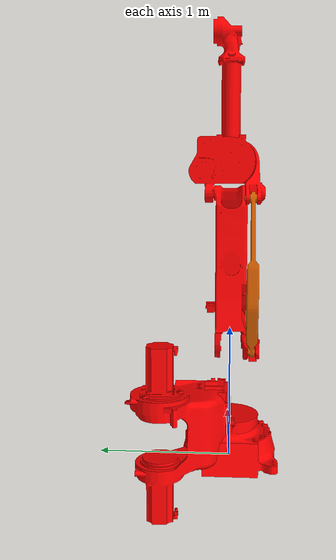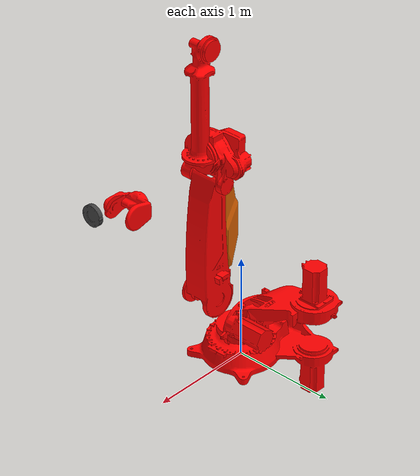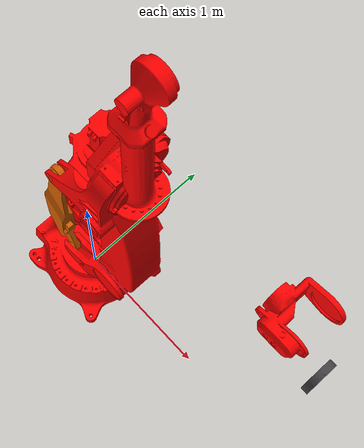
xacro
<?xml version="1.0"?>
<robot name="nj_220_2_7" xmlns:xacro="http://www.ros.org/wiki/xacro">
<xacro:include filename="$(find nj_220_2_7_gazebo)/urdf/nj_220_2_7.xacro" />

<xacro:property name="prefix" value="''" />

<link name="world"/>
  <xacro:nj_220_2_7 prefix="${prefix}"/>
  <joint name="${prefix}world_to_base_link" type="fixed">
      <origin
        xyz="0 0 0"
        rpy="0 0 0" />
      <parent link="world"/>
      <child link="${prefix}base_link"/>
  </joint>
</robot>

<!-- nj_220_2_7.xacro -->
<robot xmlns:xacro="http://ros.org/wiki/xacro">
<xacro:macro name="nj_220_2_7" params="prefix:='' interface:=hardware_interface/PositionJointInterface">

  <xacro:property name="joint_1_vel_limit" value="1.74533" />
  <xacro:property name="joint_2_vel_limit" value="1.5708"  />
  <xacro:property name="joint_3_vel_limit" value="1.91986" />
  <xacro:property name="joint_4_vel_limit" value="2.26893" />
  <xacro:property name="joint_5_vel_limit" value="2.26893" />
  <xacro:property name="joint_6_vel_limit" value="3.40339" />

  <xacro:property name="joint_1_eff_limit" value="100000" />
  <xacro:property name="joint_2_eff_limit" value="100000" />
  <xacro:property name="joint_3_eff_limit" value="100000" />
  <xacro:property name="joint_4_eff_limit" value="1230" />
  <xacro:property name="joint_5_eff_limit" value="1230" />
  <xacro:property name="joint_6_eff_limit" value="712" />

  <link name="${prefix}base_link">
    <inertial>
      <origin
        xyz="0.035817 -0.00001 0.13320"
        rpy="0 0 0" />
      <mass
        value="780.97" />
      <inertia
        ixx="39.64573032"
        ixy="0.00269524"
        ixz="-3.73357627"
        iyy="48.50586929"
        iyz="-0.00127807"
        izz="49.079656" />
    </inertial>
    <visual>
      <origin
        xyz="0 0 0"
        rpy="0 0 0" />
      <geometry>
        <mesh
          filename="package://nj_220_2_7_gazebo/meshes/base_link.STL" />
      </geometry>
      <material
        name="">
        <color
          rgba="1 0 0 1" />
      </material>
    </visual>
    <collision>
      <origin
        xyz="0 0 0"
        rpy="0 0 0" />
      <geometry>
        <mesh
          filename="package://nj_220_2_7_gazebo/meshes/base_link.STL" />
      </geometry>
    </collision>
  </link>
  <link name="${prefix}link_1">
    <inertial>
      <origin
        xyz="0.31397 0.02536 0.37802"
        rpy="0 0 0" />
      <mass
        value="120.57" />
      <inertia
        ixx="96.14944607"
        ixy="2.82831578"
        ixz="59.92048931"
        iyy="132.52767347"
        iyz="3.87136939"
        izz="76.40305744" />
    </inertial>
    <visual>
      <origin
        xyz="0 0 0"
        rpy="0 0 0" />
      <geometry>
        <mesh
          filename="package://nj_220_2_7_gazebo/meshes/link_1.STL" />
      </geometry>
      <material
        name="">
        <color
          rgba="1 0 0 1" />
      </material>
    </visual>
    <collision>
      <origin
        xyz="0 0 0"
        rpy="0 0 0" />
      <geometry>
        <mesh
          filename="package://nj_220_2_7_gazebo/meshes/link_1.STL" />
      </geometry>
    </collision>
  </link>
  <joint name="${prefix}joint_1" type="revolute">
    <origin
      xyz="0 0 0.331"
      rpy="0 0 0" />
    <parent
      link="${prefix}base_link" />
    <child
      link="${prefix}link_1" />
    <axis
      xyz="0 0 1" />
    <limit
      lower="-1.570796327"
      upper="1.570796327"
      effort="${joint_1_eff_limit}"
      velocity="${joint_1_vel_limit}" />
  </joint>
  <link name="${prefix}link_2">
    <inertial>
      <origin
        xyz="0.018416 -0.00326 0.51384"
        rpy="0 0 0" />
      <mass
        value="120.34" />
      <inertia
        ixx="53.73638778"
        ixy="-0.00887173"
        ixz="1.24711967"
        iyy="53.48705119"
        iyz="-0.66793611"
        izz="2.25971599" />
    </inertial>
    <visual>
      <origin
        xyz="0 0 0"
        rpy="0 0 0" />
      <geometry>
        <mesh
          filename="package://nj_220_2_7_gazebo/meshes/link_2.STL" />
      </geometry>
      <material
        name="">
        <color
          rgba="1 0 0 1" />
      </material>
    </visual>
    <collision>
      <origin
        xyz="0 0 0"
        rpy="0 0 0" />
      <geometry>
        <mesh
          filename="package://nj_220_2_7_gazebo/meshes/link_2.STL" />
      </geometry>
    </collision>
  </link>
  <joint name="${prefix}joint_2" type="revolute">
    <origin
      xyz="0.4 0 0.499"
      rpy="0 0 0" />
    <parent
      link="${prefix}link_1" />
    <child
      link="${prefix}link_2" />
    <axis
      xyz="0 1 0" />
    <limit
      lower="-1.308996939"
      upper="1.658062789"
      effort="${joint_2_eff_limit}"
      velocity="${joint_2_vel_limit}" />
  </joint>
  <link name="${prefix}link_2_1">
     <inertial>
       <origin
         xyz="0.14943 -0.0063786 0.023924"
         rpy="0 0 0" />
       <mass
         value="41.905" />
       <inertia
         ixx="0.18520588"
         ixy="-0.07064049"
         ixz="0.17218606"
         iyy="1.70899486"
         iyz="-0.00657138"
         izz="1.77577899" />
     </inertial>
     <visual>
       <origin
         xyz="0 0 0"
         rpy="0 0 0" />
       <geometry>
         <mesh
           filename="package://nj_220_2_7_gazebo/meshes/link_2_1.STL" />
       </geometry>
       <material
         name="">
         <color
           rgba="1 0 0 1" />
       </material>
     </visual>
     <collision>
       <origin
         xyz="0 0 0"
         rpy="0 0 0" />
       <geometry>
         <mesh
           filename="package://nj_220_2_7_gazebo/meshes/link_2_1.STL" />
       </geometry>
     </collision>
   </link>
  <joint name="${prefix}joint_3" type="revolute">
     <origin xyz="0.400 -0.1945 0.499" rpy="1.570796327 0.087266 3.141592654" />
     <parent link="${prefix}link_1" />
     <child link="${prefix}link_2_1" />
     <axis xyz="0 0 1" />
     <limit
       lower="-4.468042885"
       upper="0.174532925"
       effort="${joint_3_eff_limit}"
       velocity="${joint_3_vel_limit}" />
  </joint>
  <link name="${prefix}link_2_2">
     <inertial>
       <origin
         xyz="0.06443 0.51885 0.01485"
         rpy="0 0 0" />
       <mass
         value="60.72" />
       <inertia
         ixx="21.93937071"
         ixy="1.89190480"
         ixz="0.05733724"
         iyy="0.41028863"
         iyz="0.47064670"
         izz="22.27041146" />
     </inertial>
     <visual>
       <origin
         xyz="0 0 0"
         rpy="0 0 0" />
       <geometry>
         <mesh
           filename="package://nj_220_2_7_gazebo/meshes/link_2_2.STL" />
       </geometry>
     </visual>
     <collision>
       <origin
         xyz="0 0 0"
         rpy="0 0 0" />
       <geometry>
         <mesh
           filename="package://nj_220_2_7_gazebo/meshes/link_2_2.STL" />
       </geometry>
     </collision>
  </link>
  <joint name="${prefix}joint_2_1" type="continuous">
    <origin
      xyz="0.350 0 0.015"
      rpy="0 0 0.087266" />
    <parent
      link="${prefix}link_2_1" />
    <child
      link="${prefix}link_2_2" />
    <axis
      xyz="0 0 1" />
  </joint>
  <link name="${prefix}link_2_3">
    <inertial>
      <origin xyz="0 0 0" rpy="0 0 0" />
      <mass value="0.01" />
      <inertia
        ixx="0.00001"
        ixy="0.00000"
        ixz="0.00000"
        iyy="0.00001"
        iyz="0.00000"
        izz="0.00000" />
    </inertial>
  </link>
  <joint name="${prefix}joint_2_2" type="continuous">
    <origin xyz="0.0 1.175 0.0" rpy="0 0 0" />
    <parent link="${prefix}link_2_2" />
    <child link="${prefix}link_2_3" />
    <axis xyz="0 0 1" />
  </joint>
  <link name="${prefix}link_3">
    <inertial>
      <origin
        xyz="-0.04239 0.01939 0.2104"
        rpy="0 0 0" />
      <mass
        value="303.81" />
      <inertia
        ixx="24.45402173"
        ixy="-0.58037596"
        ixz="-2.46563321"
        iyy="20.71802091"
        iyz="2.40454026"
        izz="9.01610712" />
    </inertial>
    <visual>
      <origin
        xyz="0 0 0"
        rpy="0 0 0" />
      <geometry>
        <mesh
          filename="package://nj_220_2_7_gazebo/meshes/link_3.STL" />
      </geometry>
      <material
        name="">
        <color
          rgba="1 0 0 1" />
      </material>
    </visual>
    <collision>
      <origin
        xyz="0 0 0"
        rpy="0 0 0" />
      <geometry>
        <mesh
          filename="package://nj_220_2_7_gazebo/meshes/link_3.STL" />
      </geometry>
    </collision>
  </link>
  <joint name="${prefix}joint_3_1" type="continuous">
    <origin
      xyz="-0.34867 0.0305 0.1795"
      rpy="1.571 0.000 -3.141" />
    <parent
      link="${prefix}link_2_3" />
    <child
      link="${prefix}link_3" />
    <axis
      xyz="0 0 1" />
  </joint>
  <link name="${prefix}link_4">
    <inertial>
      <origin
        xyz="0.71228 -0.02567 -0.00003"
        rpy="0 0 0" />
      <mass
        value="90.963" />
      <inertia
        ixx="0.68929228290"
        ixy="-2.39235486446"
        ixz="-0.00192589885"
        iyy="58.11987131958"
        iyz="-0.00017654018"
        izz="58.29818388998" />
    </inertial>
    <visual>
      <origin
        xyz="0 0 0"
        rpy="0 0 0" />
      <geometry>
        <mesh
          filename="package://nj_220_2_7_gazebo/meshes/link_4.STL" />
      </geometry>
      <material
        name="">
        <color
          rgba="1 0 0 1" />
      </material>
    </visual>
    <collision>
      <origin
        xyz="0 0 0"
        rpy="0 0 0" />
      <geometry>
        <mesh
          filename="package://nj_220_2_7_gazebo/meshes/link_4.STL" />
      </geometry>
    </collision>
  </link>
  <joint name="${prefix}joint_4" type="revolute">
    <origin
      xyz="0.105 0 0.25"
      rpy="0 0 0" />
    <parent
      link="${prefix}link_3" />
    <child
      link="${prefix}link_4" />
    <axis
      xyz="1 0 0" />
    <limit
      lower="-6.2831853"
      upper="6.2831853"
      effort="${joint_4_eff_limit}"
      velocity="${joint_4_vel_limit}" />
  </joint>
  <link name="${prefix}link_5">
    <inertial>
      <origin
        xyz="0.09375 0.01506 0.00002"
        rpy="0 0 0" />
      <mass
        value="50.615" />
      <inertia
        ixx="0.67974396"
        ixy="0.04508972"
        ixz="0.00009980"
        iyy="0.83229961"
        iyz="0.00011851"
        izz="1.32231171" />
    </inertial>
    <visual>
      <origin
        xyz="0 0 0"
        rpy="0 0 0" />
      <geometry>
        <mesh
          filename="package://nj_220_2_7_gazebo/meshes/link_5.STL" />
      </geometry>
      <material
        name="">
        <color
          rgba="1 0 0 1" />
      </material>
    </visual>
    <collision>
      <origin
        xyz="0 0 0"
        rpy="0 0 0" />
      <geometry>
        <mesh
          filename="package://nj_220_2_7_gazebo/meshes/link_5.STL" />
      </geometry>
    </collision>
  </link>
  <joint name="${prefix}joint_5" type="revolute">
    <origin
      xyz="1.02033 0 0"
      rpy="0 0 0" />
    <parent
      link="${prefix}link_4" />
    <child
      link="${prefix}link_5" />
    <axis
      xyz="0 1 0" />
    <limit
      lower="-2.1816"
      upper="2.1816"
      effort="${joint_5_eff_limit}"
      velocity="${joint_5_vel_limit}" />
  </joint>
  <link name="${prefix}link_6">
    <inertial>
      <origin
        xyz="0.0058594 -0.00060952 -5.99E-05"
        rpy="0 0 0" />
      <mass
        value="5.3437" />
      <inertia
        ixx="0.02913604"
        ixy="-0.00000822"
        ixz="-0.00000086"
        iyy="0.01533002"
        iyz="0.00000585"
        izz="0.01518874" />
    </inertial>
    <visual>
      <origin
        xyz="0 0 0"
        rpy="0 0 0" />
      <geometry>
        <mesh
          filename="package://nj_220_2_7_gazebo/meshes/link_6.STL" />
      </geometry>
      <material
        name="">
        <color
          rgba="0.25098 0.25098 0.25098 1" />
      </material>
    </visual>
    <collision>
      <origin
        xyz="0 0 0"
        rpy="0 0 0" />
      <geometry>
        <mesh
          filename="package://nj_220_2_7_gazebo/meshes/link_6.STL" />
      </geometry>
    </collision>
  </link>
  <joint name="${prefix}joint_6" type="revolute">
    <origin
      xyz="0.2085 0 0"
      rpy="0 0 0" />
    <parent
      link="${prefix}link_5" />
    <child
      link="${prefix}link_6" />
    <axis
      xyz="1 0 0" />
    <limit
      lower="-6.2831853"
      upper="6.2831853"
      effort="${joint_6_eff_limit}"
      velocity="${joint_6_vel_limit}" />
  </joint>

  <gazebo>
    <joint name="${prefix}closing_joint" type="continuous">
      <parent>${prefix}link_2</parent>
      <child>${prefix}link_3</child>
      <pose relative_to="${prefix}link_2"> 0, 0, 1.175, 0, 0, 0</pose>
      <axis>
        <xyz>0 1 0</xyz>
      </axis>
    </joint>
  </gazebo>

  <link name="${prefix}flange">
    <inertial>
      <origin xyz="0 0 0" rpy="0 0 0" />
      <mass value="0.01" />
      <inertia
        ixx="0.00001"
        ixy="0.00000"
        ixz="0.00000"
        iyy="0.00001"
        iyz="0.00000"
        izz="0.00000" />
    </inertial>
  </link>
  <joint name="${prefix}link_6_to_flange" type="fixed">
    <origin xyz="0 0 -0.0395" rpy="0 0 0" />
    <parent link="${prefix}link_6" />
    <child link="${prefix}flange" />
    <axis xyz="0 0 0" />
  </joint>

<xacro:include filename="$(find nj_220_2_7_description)/urdf/nj_220_2_7_transmission.xacro" />
<xacro:nj_220_2_7_transmission prefix="${prefix}" interface="${interface}"/>
<xacro:include filename="$(find nj_220_2_7_description)/urdf/nj_220_2_7_gazebo.xacro" />
<xacro:nj_220_2_7_roscontrol prefix="${prefix}"/>

</xacro:macro>
</robot>
